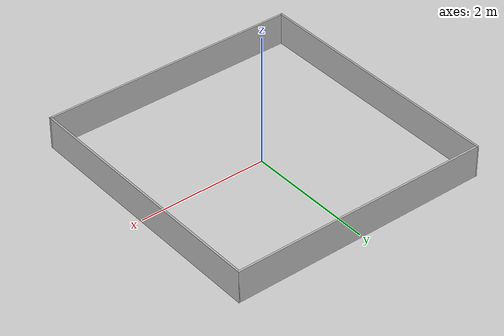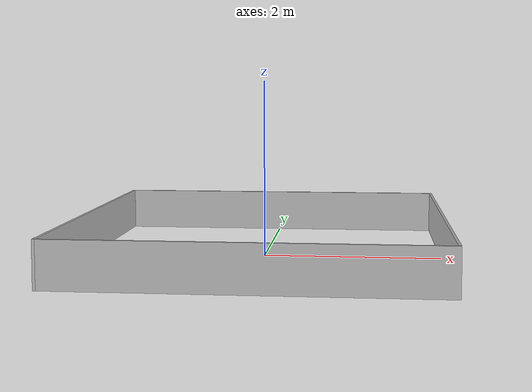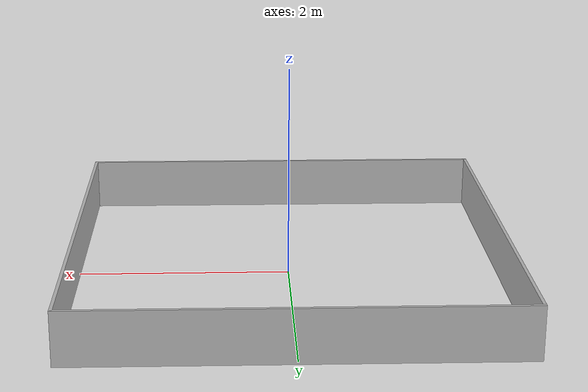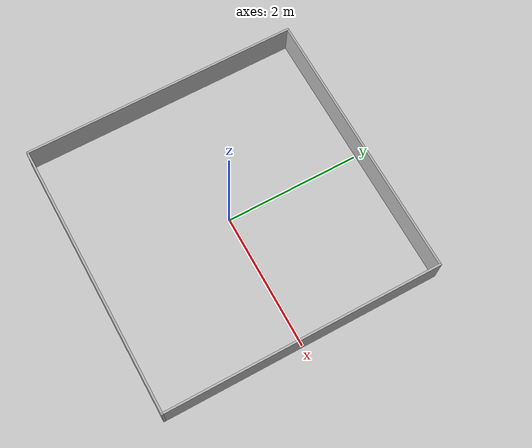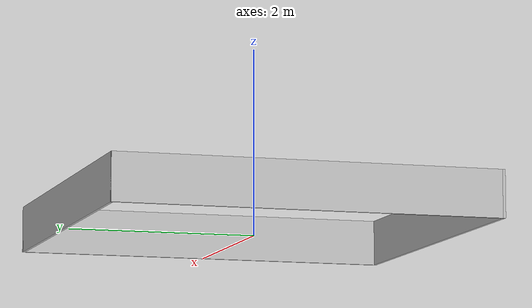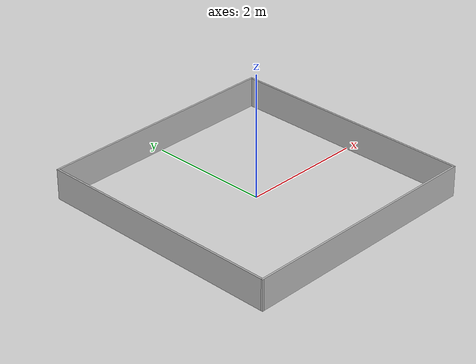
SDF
<?xml version='1.0'?>
<sdf version='1.8'>
  <model name='simple_room'>
    <static>1</static>

    <!-- 北の壁 -->
    <link name='Wall_North'>
      <collision name='collision'>
        <geometry>
          <box>
            <size>4.05 0.03 0.5</size>
          </box>
        </geometry>
        <pose>0 0 0.25 0 0 0</pose>
      </collision>
      <visual name='visual'>
        <pose>0 0 0.25 0 0 0</pose>
        <geometry>
          <box>
            <size>4.05 0.03 0.5</size>
          </box>
        </geometry>
      </visual>
      <pose>0 2.035 0 0 0 0</pose>
    </link>

    <!-- 東の壁 -->
    <link name='Wall_East'>
      <collision name='collision'>
        <geometry>
          <box>
            <size>4.1 0.03 0.5</size>
          </box>
        </geometry>
        <pose>0 0 0.25 0 0 0</pose>
      </collision>
      <visual name='visual'>
        <pose>0 0 0.25 0 0 0</pose>
        <geometry>
          <box>
            <size>4.1 0.03 0.5</size>
          </box>
        </geometry>
      </visual>
      <pose>2.01 0 0 0 0 -1.5708</pose>
    </link>

    <!-- 南の壁 -->
    <link name='Wall_South'>
      <collision name='collision'>
        <geometry>
          <box>
            <size>4.05 0.03 0.5</size>
          </box>
        </geometry>
        <pose>0 0 0.25 0 0 0</pose>
      </collision>
      <visual name='visual'>
        <pose>0 0 0.25 0 0 0</pose>
        <geometry>
          <box>
            <size>4.05 0.03 0.5</size>
          </box>
        </geometry>
      </visual>
      <pose>0 -2.035 0 0 0 3.14159</pose>
    </link>

    <!-- 西の壁 -->
    <link name='Wall_West'>
      <collision name='collision'>
        <geometry>
          <box>
            <size>4.1 0.03 0.5</size>
          </box>
        </geometry>
        <pose>0 0 0.25 0 0 0</pose>
      </collision>
      <visual name='visual'>
        <pose>0 0 0.25 0 0 0</pose>
        <geometry>
          <box>
            <size>4.1 0.03 0.5</size>
          </box>
        </geometry>
      </visual>
      <pose>-2.01 0 0 0 0 1.5708</pose>
    </link>

  </model>
</sdf>
